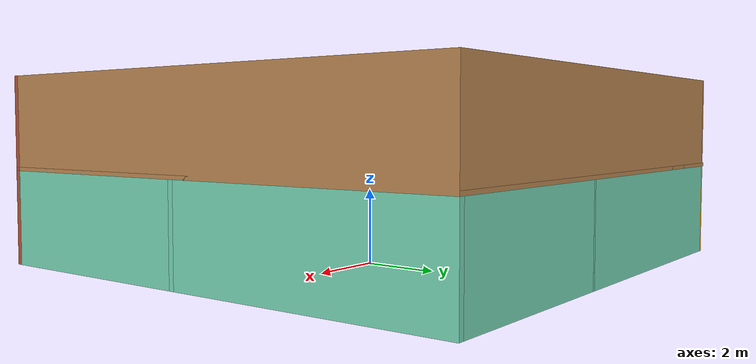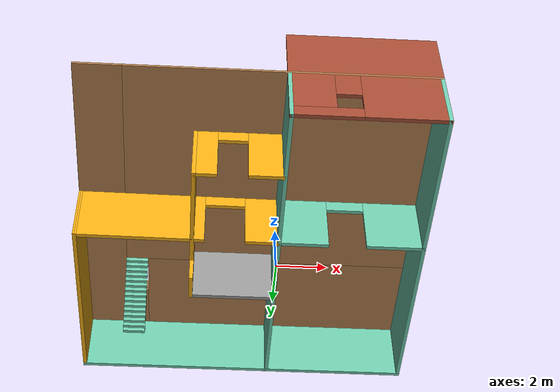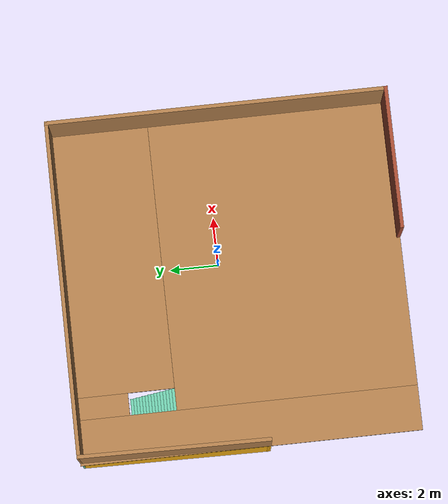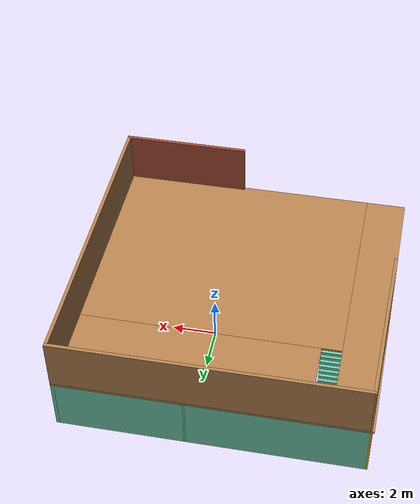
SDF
<?xml version='1.0'?>
<sdf version='1.7'>
  <model name='Robot_House'>
    <pose>-1.06694 -0.541754 0 0 -0 0</pose>
    <link name='Floor_0'>
      <pose>-0 0.000103 2.5 0 -0 0</pose>
      <visual name='Floor_0_Visual_0'>
        <pose>-5.88955 0 0.05 0 -0 0</pose>
        <geometry>
          <box>
            <size>1.8219 13.751 0.1</size>
          </box>
        </geometry>
        <material>
          <script>
            <uri>file://media/materials/scripts/gazebo.material</uri>
            <name>Gazebo/Wood</name>
          </script>
          <ambient>1 0.764706 0.305882 1</ambient>
        </material>
        <meta>
          <layer>1</layer>
        </meta>
      </visual>
      <collision name='Floor_0_Collision_0'>
        <geometry>
          <box>
            <size>1.8219 13.751 0.1</size>
          </box>
        </geometry>
        <pose>-5.88955 0 0.05 0 -0 0</pose>
      </collision>
      <visual name='Floor_0_Visual_1'>
        <pose>0.910949 -2.02113 0.05 0 -0 0</pose>
        <geometry>
          <box>
            <size>11.7791 9.70874 0.1</size>
          </box>
        </geometry>
        <material>
          <script>
            <uri>file://media/materials/scripts/gazebo.material</uri>
            <name>Gazebo/Wood</name>
          </script>
          <ambient>1 0.764706 0.305882 1</ambient>
        </material>
        <meta>
          <layer>1</layer>
        </meta>
      </visual>
      <collision name='Floor_0_Collision_1'>
        <geometry>
          <box>
            <size>11.7791 9.70874 0.1</size>
          </box>
        </geometry>
        <pose>0.910949 -2.02113 0.05 0 -0 0</pose>
      </collision>
      <visual name='Floor_0_Visual_2'>
        <pose>1.35818 4.85437 0.05 0 -0 0</pose>
        <geometry>
          <box>
            <size>10.8846 4.04226 0.1</size>
          </box>
        </geometry>
        <material>
          <script>
            <uri>file://media/materials/scripts/gazebo.material</uri>
            <name>Gazebo/Wood</name>
          </script>
          <ambient>1 0.764706 0.305882 1</ambient>
        </material>
        <meta>
          <layer>1</layer>
        </meta>
      </visual>
      <collision name='Floor_0_Collision_2'>
        <geometry>
          <box>
            <size>10.8846 4.04226 0.1</size>
          </box>
        </geometry>
        <pose>1.35818 4.85437 0.05 0 -0 0</pose>
      </collision>
      <visual name='Floor_0_Visual_3'>
        <pose>-4.53137 5.79526 0.05 0 -0 0</pose>
        <geometry>
          <box>
            <size>0.894464 2.16048 0.1</size>
          </box>
        </geometry>
        <material>
          <script>
            <uri>file://media/materials/scripts/gazebo.material</uri>
            <name>Gazebo/Wood</name>
          </script>
          <ambient>1 0.764706 0.305882 1</ambient>
        </material>
        <meta>
          <layer>1</layer>
        </meta>
      </visual>
      <collision name='Floor_0_Collision_3'>
        <geometry>
          <box>
            <size>0.894464 2.16048 0.1</size>
          </box>
        </geometry>
        <pose>-4.53137 5.79526 0.05 0 -0 0</pose>
      </collision>
    </link>
    <link name='Stairs_0'>
      <visual name='Stairs_0_Visual_0'>
        <pose>-4.53137 4.6524 0.083333 0 -0 0</pose>
        <geometry>
          <box>
            <size>0.894464 0.125452 0.166667</size>
          </box>
        </geometry>
        <material>
          <script>
            <uri>file://media/materials/scripts/gazebo.material</uri>
            <name>Gazebo/Grey</name>
          </script>
          <ambient>0.435294 0.796078 0.67451 1</ambient>
        </material>
        <meta>
          <layer>0</layer>
        </meta>
      </visual>
      <collision name='Stairs_0_Collision_0'>
        <geometry>
          <box>
            <size>0.894464 0.125452 0.166667</size>
          </box>
        </geometry>
        <pose>-4.53137 4.6524 0.083333 0 -0 0</pose>
      </collision>
      <visual name='Stairs_0_Visual_1'>
        <pose>-4.53137 4.52694 0.25 0 -0 0</pose>
        <geometry>
          <box>
            <size>0.894464 0.125452 0.166667</size>
          </box>
        </geometry>
        <material>
          <script>
            <uri>file://media/materials/scripts/gazebo.material</uri>
            <name>Gazebo/Grey</name>
          </script>
          <ambient>0.435294 0.796078 0.67451 1</ambient>
        </material>
        <meta>
          <layer>0</layer>
        </meta>
      </visual>
      <collision name='Stairs_0_Collision_1'>
        <geometry>
          <box>
            <size>0.894464 0.125452 0.166667</size>
          </box>
        </geometry>
        <pose>-4.53137 4.52694 0.25 0 -0 0</pose>
      </collision>
      <visual name='Stairs_0_Visual_2'>
        <pose>-4.53137 4.40149 0.416667 0 -0 0</pose>
        <geometry>
          <box>
            <size>0.894464 0.125452 0.166667</size>
          </box>
        </geometry>
        <material>
          <script>
            <uri>file://media/materials/scripts/gazebo.material</uri>
            <name>Gazebo/Grey</name>
          </script>
          <ambient>0.435294 0.796078 0.67451 1</ambient>
        </material>
        <meta>
          <layer>0</layer>
        </meta>
      </visual>
      <collision name='Stairs_0_Collision_2'>
        <geometry>
          <box>
            <size>0.894464 0.125452 0.166667</size>
          </box>
        </geometry>
        <pose>-4.53137 4.40149 0.416667 0 -0 0</pose>
      </collision>
      <visual name='Stairs_0_Visual_3'>
        <pose>-4.53137 4.27604 0.583333 0 -0 0</pose>
        <geometry>
          <box>
            <size>0.894464 0.125452 0.166667</size>
          </box>
        </geometry>
        <material>
          <script>
            <uri>file://media/materials/scripts/gazebo.material</uri>
            <name>Gazebo/Grey</name>
          </script>
          <ambient>0.435294 0.796078 0.67451 1</ambient>
        </material>
        <meta>
          <layer>0</layer>
        </meta>
      </visual>
      <collision name='Stairs_0_Collision_3'>
        <geometry>
          <box>
            <size>0.894464 0.125452 0.166667</size>
          </box>
        </geometry>
        <pose>-4.53137 4.27604 0.583333 0 -0 0</pose>
      </collision>
      <visual name='Stairs_0_Visual_4'>
        <pose>-4.53137 4.15059 0.75 0 -0 0</pose>
        <geometry>
          <box>
            <size>0.894464 0.125452 0.166667</size>
          </box>
        </geometry>
        <material>
          <script>
            <uri>file://media/materials/scripts/gazebo.material</uri>
            <name>Gazebo/Grey</name>
          </script>
          <ambient>0.435294 0.796078 0.67451 1</ambient>
        </material>
        <meta>
          <layer>0</layer>
        </meta>
      </visual>
      <collision name='Stairs_0_Collision_4'>
        <geometry>
          <box>
            <size>0.894464 0.125452 0.166667</size>
          </box>
        </geometry>
        <pose>-4.53137 4.15059 0.75 0 -0 0</pose>
      </collision>
      <visual name='Stairs_0_Visual_5'>
        <pose>-4.53137 4.02514 0.916667 0 -0 0</pose>
        <geometry>
          <box>
            <size>0.894464 0.125452 0.166667</size>
          </box>
        </geometry>
        <material>
          <script>
            <uri>file://media/materials/scripts/gazebo.material</uri>
            <name>Gazebo/Grey</name>
          </script>
          <ambient>0.435294 0.796078 0.67451 1</ambient>
        </material>
        <meta>
          <layer>0</layer>
        </meta>
      </visual>
      <collision name='Stairs_0_Collision_5'>
        <geometry>
          <box>
            <size>0.894464 0.125452 0.166667</size>
          </box>
        </geometry>
        <pose>-4.53137 4.02514 0.916667 0 -0 0</pose>
      </collision>
      <visual name='Stairs_0_Visual_6'>
        <pose>-4.53137 3.89968 1.08333 0 -0 0</pose>
        <geometry>
          <box>
            <size>0.894464 0.125452 0.166667</size>
          </box>
        </geometry>
        <material>
          <script>
            <uri>file://media/materials/scripts/gazebo.material</uri>
            <name>Gazebo/Grey</name>
          </script>
          <ambient>0.435294 0.796078 0.67451 1</ambient>
        </material>
        <meta>
          <layer>0</layer>
        </meta>
      </visual>
      <collision name='Stairs_0_Collision_6'>
        <geometry>
          <box>
            <size>0.894464 0.125452 0.166667</size>
          </box>
        </geometry>
        <pose>-4.53137 3.89968 1.08333 0 -0 0</pose>
      </collision>
      <visual name='Stairs_0_Visual_7'>
        <pose>-4.53137 3.77423 1.25 0 -0 0</pose>
        <geometry>
          <box>
            <size>0.894464 0.125452 0.166667</size>
          </box>
        </geometry>
        <material>
          <script>
            <uri>file://media/materials/scripts/gazebo.material</uri>
            <name>Gazebo/Grey</name>
          </script>
          <ambient>0.435294 0.796078 0.67451 1</ambient>
        </material>
        <meta>
          <layer>0</layer>
        </meta>
      </visual>
      <collision name='Stairs_0_Collision_7'>
        <geometry>
          <box>
            <size>0.894464 0.125452 0.166667</size>
          </box>
        </geometry>
        <pose>-4.53137 3.77423 1.25 0 -0 0</pose>
      </collision>
      <visual name='Stairs_0_Visual_8'>
        <pose>-4.53137 3.64878 1.41667 0 -0 0</pose>
        <geometry>
          <box>
            <size>0.894464 0.125452 0.166667</size>
          </box>
        </geometry>
        <material>
          <script>
            <uri>file://media/materials/scripts/gazebo.material</uri>
            <name>Gazebo/Grey</name>
          </script>
          <ambient>0.435294 0.796078 0.67451 1</ambient>
        </material>
        <meta>
          <layer>0</layer>
        </meta>
      </visual>
      <collision name='Stairs_0_Collision_8'>
        <geometry>
          <box>
            <size>0.894464 0.125452 0.166667</size>
          </box>
        </geometry>
        <pose>-4.53137 3.64878 1.41667 0 -0 0</pose>
      </collision>
      <visual name='Stairs_0_Visual_9'>
        <pose>-4.53137 3.52333 1.58333 0 -0 0</pose>
        <geometry>
          <box>
            <size>0.894464 0.125452 0.166667</size>
          </box>
        </geometry>
        <material>
          <script>
            <uri>file://media/materials/scripts/gazebo.material</uri>
            <name>Gazebo/Grey</name>
          </script>
          <ambient>0.435294 0.796078 0.67451 1</ambient>
        </material>
        <meta>
          <layer>0</layer>
        </meta>
      </visual>
      <collision name='Stairs_0_Collision_9'>
        <geometry>
          <box>
            <size>0.894464 0.125452 0.166667</size>
          </box>
        </geometry>
        <pose>-4.53137 3.52333 1.58333 0 -0 0</pose>
      </collision>
      <visual name='Stairs_0_Visual_10'>
        <pose>-4.53137 3.39788 1.75 0 -0 0</pose>
        <geometry>
          <box>
            <size>0.894464 0.125452 0.166667</size>
          </box>
        </geometry>
        <material>
          <script>
            <uri>file://media/materials/scripts/gazebo.material</uri>
            <name>Gazebo/Grey</name>
          </script>
          <ambient>0.435294 0.796078 0.67451 1</ambient>
        </material>
        <meta>
          <layer>0</layer>
        </meta>
      </visual>
      <collision name='Stairs_0_Collision_10'>
        <geometry>
          <box>
            <size>0.894464 0.125452 0.166667</size>
          </box>
        </geometry>
        <pose>-4.53137 3.39788 1.75 0 -0 0</pose>
      </collision>
      <visual name='Stairs_0_Visual_11'>
        <pose>-4.53137 3.27243 1.91667 0 -0 0</pose>
        <geometry>
          <box>
            <size>0.894464 0.125452 0.166667</size>
          </box>
        </geometry>
        <material>
          <script>
            <uri>file://media/materials/scripts/gazebo.material</uri>
            <name>Gazebo/Grey</name>
          </script>
          <ambient>0.435294 0.796078 0.67451 1</ambient>
        </material>
        <meta>
          <layer>0</layer>
        </meta>
      </visual>
      <collision name='Stairs_0_Collision_11'>
        <geometry>
          <box>
            <size>0.894464 0.125452 0.166667</size>
          </box>
        </geometry>
        <pose>-4.53137 3.27243 1.91667 0 -0 0</pose>
      </collision>
      <visual name='Stairs_0_Visual_12'>
        <pose>-4.53137 3.14697 2.08333 0 -0 0</pose>
        <geometry>
          <box>
            <size>0.894464 0.125452 0.166667</size>
          </box>
        </geometry>
        <material>
          <script>
            <uri>file://media/materials/scripts/gazebo.material</uri>
            <name>Gazebo/Grey</name>
          </script>
          <ambient>0.435294 0.796078 0.67451 1</ambient>
        </material>
        <meta>
          <layer>0</layer>
        </meta>
      </visual>
      <collision name='Stairs_0_Collision_12'>
        <geometry>
          <box>
            <size>0.894464 0.125452 0.166667</size>
          </box>
        </geometry>
        <pose>-4.53137 3.14697 2.08333 0 -0 0</pose>
      </collision>
      <visual name='Stairs_0_Visual_13'>
        <pose>-4.53137 3.02152 2.25 0 -0 0</pose>
        <geometry>
          <box>
            <size>0.894464 0.125452 0.166667</size>
          </box>
        </geometry>
        <material>
          <script>
            <uri>file://media/materials/scripts/gazebo.material</uri>
            <name>Gazebo/Grey</name>
          </script>
          <ambient>0.435294 0.796078 0.67451 1</ambient>
        </material>
        <meta>
          <layer>0</layer>
        </meta>
      </visual>
      <collision name='Stairs_0_Collision_13'>
        <geometry>
          <box>
            <size>0.894464 0.125452 0.166667</size>
          </box>
        </geometry>
        <pose>-4.53137 3.02152 2.25 0 -0 0</pose>
      </collision>
      <visual name='Stairs_0_Visual_14'>
        <pose>-4.53137 2.89607 2.41667 0 -0 0</pose>
        <geometry>
          <box>
            <size>0.894464 0.125452 0.166667</size>
          </box>
        </geometry>
        <material>
          <script>
            <uri>file://media/materials/scripts/gazebo.material</uri>
            <name>Gazebo/Grey</name>
          </script>
          <ambient>0.435294 0.796078 0.67451 1</ambient>
        </material>
        <meta>
          <layer>0</layer>
        </meta>
      </visual>
      <collision name='Stairs_0_Collision_14'>
        <geometry>
          <box>
            <size>0.894464 0.125452 0.166667</size>
          </box>
        </geometry>
        <pose>-4.53137 2.89607 2.41667 0 -0 0</pose>
      </collision>
    </link>
    <link name='Wall_0'>
      <collision name='Wall_0_Collision'>
        <geometry>
          <box>
            <size>13.5 0.15 2.5</size>
          </box>
        </geometry>
        <pose>0 0 1.25 0 -0 0</pose>
      </collision>
      <visual name='Wall_0_Visual'>
        <pose>0 0 1.25 0 -0 0</pose>
        <geometry>
          <box>
            <size>13.5 0.15 2.5</size>
          </box>
        </geometry>
        <material>
          <script>
            <uri>file://media/materials/scripts/gazebo.material</uri>
            <name>Gazebo/Grey</name>
          </script>
          <ambient>0.435294 0.796078 0.67451 1</ambient>
        </material>
        <meta>
          <layer>0</layer>
        </meta>
      </visual>
      <pose>0.050496 6.79961 0 0 -0 0</pose>
    </link>
    <link name='Wall_1'>
      <collision name='Wall_1_Collision'>
        <geometry>
          <box>
            <size>13.7504 0.15 2.5</size>
          </box>
        </geometry>
        <pose>0 0 1.25 0 -0 0</pose>
      </collision>
      <visual name='Wall_1_Visual'>
        <pose>0 0 1.25 0 -0 0</pose>
        <geometry>
          <box>
            <size>13.7504 0.15 2.5</size>
          </box>
        </geometry>
        <material>
          <script>
            <uri>file://media/materials/scripts/gazebo.material</uri>
            <name>Gazebo/Grey</name>
          </script>
          <ambient>0.435294 0.796078 0.67451 1</ambient>
        </material>
        <meta>
          <layer>0</layer>
        </meta>
      </visual>
      <pose>6.7255 -0.000394 0 0 -0 -1.5708</pose>
    </link>
    <link name='Wall_10'>
      <collision name='Wall_10_Collision'>
        <geometry>
          <box>
            <size>3.42964 0.15 2.5</size>
          </box>
        </geometry>
        <pose>0 0 1.25 0 -0 0</pose>
      </collision>
      <visual name='Wall_10_Visual'>
        <pose>0 0 1.25 0 -0 0</pose>
        <geometry>
          <box>
            <size>3.42964 0.15 2.5</size>
          </box>
        </geometry>
        <material>
          <script>
            <uri>file://media/materials/scripts/gazebo.material</uri>
            <name>Gazebo/Grey</name>
          </script>
          <ambient>1 1 1 1</ambient>
        </material>
        <meta>
          <layer>0</layer>
        </meta>
      </visual>
      <pose>-0.560176 2.40226 0 0 -0 3.14159</pose>
    </link>
    <link name='Wall_11'>
      <pose>-2.23518 -0.772739 0 0 -0 -1.5708</pose>
      <visual name='Wall_11_Visual_0'>
        <pose>-2.70776 0 1.25 0 -0 0</pose>
        <geometry>
          <box>
            <size>1.08536 0.15 2.5</size>
          </box>
        </geometry>
        <material>
          <script>
            <uri>file://media/materials/scripts/gazebo.material</uri>
            <name>Gazebo/Grey</name>
          </script>
          <ambient>0.960784 0.686275 0.0784314 1</ambient>
        </material>
        <meta>
          <layer>0</layer>
        </meta>
      </visual>
      <collision name='Wall_11_Collision_0'>
        <geometry>
          <box>
            <size>1.08536 0.15 2.5</size>
          </box>
        </geometry>
        <pose>-2.70776 0 1.25 0 -0 0</pose>
      </collision>
      <visual name='Wall_11_Visual_1'>
        <pose>1.04545 0 1.25 0 -0 0</pose>
        <geometry>
          <box>
            <size>4.40998 0.15 2.5</size>
          </box>
        </geometry>
        <material>
          <script>
            <uri>file://media/materials/scripts/gazebo.material</uri>
            <name>Gazebo/Grey</name>
          </script>
          <ambient>0.960784 0.686275 0.0784314 1</ambient>
        </material>
        <meta>
          <layer>0</layer>
        </meta>
      </visual>
      <collision name='Wall_11_Collision_1'>
        <geometry>
          <box>
            <size>4.40998 0.15 2.5</size>
          </box>
        </geometry>
        <pose>1.04545 0 1.25 0 -0 0</pose>
      </collision>
      <visual name='Wall_11_Visual_2'>
        <pose>-1.66231 0 2.25 0 -0 0</pose>
        <geometry>
          <box>
            <size>1.00554 0.15 0.5</size>
          </box>
        </geometry>
        <material>
          <script>
            <uri>file://media/materials/scripts/gazebo.material</uri>
            <name>Gazebo/Grey</name>
          </script>
          <ambient>0.960784 0.686275 0.0784314 1</ambient>
        </material>
        <meta>
          <layer>0</layer>
        </meta>
      </visual>
      <collision name='Wall_11_Collision_2'>
        <geometry>
          <box>
            <size>1.00554 0.15 0.5</size>
          </box>
        </geometry>
        <pose>-1.66231 0 2.25 0 -0 0</pose>
      </collision>
    </link>
    <link name='Wall_12'>
      <pose>-0.595355 -3.94774 0 0 -0 0</pose>
      <visual name='Wall_12_Visual_0'>
        <pose>-1.24751 0 1.25 0 -0 0</pose>
        <geometry>
          <box>
            <size>0.934632 0.15 2.5</size>
          </box>
        </geometry>
        <material>
          <script>
            <uri>file://media/materials/scripts/gazebo.material</uri>
            <name>Gazebo/Grey</name>
          </script>
          <ambient>0.960784 0.686275 0.0784314 1</ambient>
        </material>
        <meta>
          <layer>0</layer>
        </meta>
      </visual>
      <collision name='Wall_12_Collision_0'>
        <geometry>
          <box>
            <size>0.934632 0.15 2.5</size>
          </box>
        </geometry>
        <pose>-1.24751 0 1.25 0 -0 0</pose>
      </collision>
      <visual name='Wall_12_Visual_1'>
        <pose>1.04044 0 1.25 0 -0 0</pose>
        <geometry>
          <box>
            <size>1.34876 0.15 2.5</size>
          </box>
        </geometry>
        <material>
          <script>
            <uri>file://media/materials/scripts/gazebo.material</uri>
            <name>Gazebo/Grey</name>
          </script>
          <ambient>0.960784 0.686275 0.0784314 1</ambient>
        </material>
        <meta>
          <layer>0</layer>
        </meta>
      </visual>
      <collision name='Wall_12_Collision_1'>
        <geometry>
          <box>
            <size>1.34876 0.15 2.5</size>
          </box>
        </geometry>
        <pose>1.04044 0 1.25 0 -0 0</pose>
      </collision>
      <visual name='Wall_12_Visual_2'>
        <pose>-0.207064 0 2.25 0 -0 0</pose>
        <geometry>
          <box>
            <size>1.14625 0.15 0.5</size>
          </box>
        </geometry>
        <material>
          <script>
            <uri>file://media/materials/scripts/gazebo.material</uri>
            <name>Gazebo/Grey</name>
          </script>
          <ambient>0.960784 0.686275 0.0784314 1</ambient>
        </material>
        <meta>
          <layer>0</layer>
        </meta>
      </visual>
      <collision name='Wall_12_Collision_2'>
        <geometry>
          <box>
            <size>1.14625 0.15 0.5</size>
          </box>
        </geometry>
        <pose>-0.207064 0 2.25 0 -0 0</pose>
      </collision>
    </link>
    <link name='Wall_14'>
      <collision name='Wall_14_Collision'>
        <geometry>
          <box>
            <size>13.5 0.15 2.5</size>
          </box>
        </geometry>
        <pose>0 0 1.25 0 -0 0</pose>
      </collision>
      <visual name='Wall_14_Visual'>
        <pose>0 0 1.25 0 -0 0</pose>
        <geometry>
          <box>
            <size>13.5 0.15 2.5</size>
          </box>
        </geometry>
        <material>
          <script>
            <uri>file://media/materials/scripts/gazebo.material</uri>
            <name>Gazebo/Wood</name>
          </script>
          <ambient>0.760784 0.662745 0.627451 1</ambient>
        </material>
        <meta>
          <layer>1</layer>
        </meta>
      </visual>
      <pose>0.050496 6.79961 2.5 0 -0 0</pose>
    </link>
    <link name='Wall_15'>
      <collision name='Wall_15_Collision'>
        <geometry>
          <box>
            <size>13.75 0.15 2.5</size>
          </box>
        </geometry>
        <pose>0 0 1.25 0 -0 0</pose>
      </collision>
      <visual name='Wall_15_Visual'>
        <pose>0 0 1.25 0 -0 0</pose>
        <geometry>
          <box>
            <size>13.75 0.15 2.5</size>
          </box>
        </geometry>
        <material>
          <script>
            <uri>file://media/materials/scripts/gazebo.material</uri>
            <name>Gazebo/Wood</name>
          </script>
          <ambient>0.760784 0.662745 0.627451 1</ambient>
        </material>
        <meta>
          <layer>1</layer>
        </meta>
      </visual>
      <pose>6.7255 -0.000394 2.5 0 -0 -1.5708</pose>
    </link>
    <link name='Wall_16'>
      <collision name='Wall_16_Collision'>
        <geometry>
          <box>
            <size>5.75 0.15 2.5</size>
          </box>
        </geometry>
        <pose>0 0 1.25 0 -0 0</pose>
      </collision>
      <visual name='Wall_16_Visual'>
        <pose>0 0 1.25 0 -0 0</pose>
        <geometry>
          <box>
            <size>5.75 0.15 2.5</size>
          </box>
        </geometry>
        <material>
          <script>
            <uri>file://media/materials/scripts/gazebo.material</uri>
            <name>Gazebo/Bricks</name>
          </script>
          <ambient>1 1 1 1</ambient>
        </material>
        <meta>
          <layer>1</layer>
        </meta>
      </visual>
      <pose>3.9255 -6.80039 2.5 0 -0 3.14159</pose>
    </link>
    <link name='Wall_19'>
      <collision name='Wall_19_Collision'>
        <geometry>
          <box>
            <size>7.65067 0.15 2.5</size>
          </box>
        </geometry>
        <pose>0 0 1.25 0 -0 0</pose>
      </collision>
      <visual name='Wall_19_Visual'>
        <pose>0 0 1.25 0 -0 0</pose>
        <geometry>
          <box>
            <size>7.65067 0.15 2.5</size>
          </box>
        </geometry>
        <material>
          <script>
            <uri>file://media/materials/scripts/gazebo.material</uri>
            <name>Gazebo/Wood</name>
          </script>
          <ambient>0.760784 0.662745 0.627451 1</ambient>
        </material>
        <meta>
          <layer>1</layer>
        </meta>
      </visual>
      <pose>-6.6745 3.04961 2.5 0 -0 1.55746</pose>
    </link>
    <link name='Wall_2'>
      <pose>3.9255 -6.80039 0 0 -0 3.14159</pose>
      <visual name='Wall_2_Visual_0'>
        <pose>-1.32271 0 1.25 0 -0 0</pose>
        <geometry>
          <box>
            <size>3.10459 0.15 2.5</size>
          </box>
        </geometry>
        <material>
          <script>
            <uri>file://media/materials/scripts/gazebo.material</uri>
            <name>Gazebo/Bricks</name>
          </script>
          <ambient>0.435294 0.796078 0.67451 1</ambient>
        </material>
        <meta>
          <layer>0</layer>
        </meta>
      </visual>
      <collision name='Wall_2_Collision_0'>
        <geometry>
          <box>
            <size>3.10459 0.15 2.5</size>
          </box>
        </geometry>
        <pose>-1.32271 0 1.25 0 -0 0</pose>
      </collision>
      <visual name='Wall_2_Visual_1'>
        <pose>1.55229 0 0.25 0 -0 0</pose>
        <geometry>
          <box>
            <size>2.64541 0.15 0.5</size>
          </box>
        </geometry>
        <material>
          <script>
            <uri>file://media/materials/scripts/gazebo.material</uri>
            <name>Gazebo/Bricks</name>
          </script>
          <ambient>0.435294 0.796078 0.67451 1</ambient>
        </material>
        <meta>
          <layer>0</layer>
        </meta>
      </visual>
      <collision name='Wall_2_Collision_1'>
        <geometry>
          <box>
            <size>2.64541 0.15 0.5</size>
          </box>
        </geometry>
        <pose>1.55229 0 0.25 0 -0 0</pose>
      </collision>
      <visual name='Wall_2_Visual_2'>
        <pose>2.02265 0 1.5 0 -0 0</pose>
        <geometry>
          <box>
            <size>1.7047 0.15 2</size>
          </box>
        </geometry>
        <material>
          <script>
            <uri>file://media/materials/scripts/gazebo.material</uri>
            <name>Gazebo/Bricks</name>
          </script>
          <ambient>0.435294 0.796078 0.67451 1</ambient>
        </material>
        <meta>
          <layer>0</layer>
        </meta>
      </visual>
      <collision name='Wall_2_Collision_2'>
        <geometry>
          <box>
            <size>1.7047 0.15 2</size>
          </box>
        </geometry>
        <pose>2.02265 0 1.5 0 -0 0</pose>
      </collision>
      <visual name='Wall_2_Visual_3'>
        <pose>0.699946 0 1.9 0 -0 0</pose>
        <geometry>
          <box>
            <size>0.940715 0.15 1.2</size>
          </box>
        </geometry>
        <material>
          <script>
            <uri>file://media/materials/scripts/gazebo.material</uri>
            <name>Gazebo/Bricks</name>
          </script>
          <ambient>0.435294 0.796078 0.67451 1</ambient>
        </material>
        <meta>
          <layer>0</layer>
        </meta>
      </visual>
      <collision name='Wall_2_Collision_3'>
        <geometry>
          <box>
            <size>0.940715 0.15 1.2</size>
          </box>
        </geometry>
        <pose>0.699946 0 1.9 0 -0 0</pose>
      </collision>
    </link>
    <link name='Wall_3'>
      <collision name='Wall_3_Collision'>
        <geometry>
          <box>
            <size>6.32036 0.15 2.5</size>
          </box>
        </geometry>
        <pose>0 0 1.25 0 -0 0</pose>
      </collision>
      <visual name='Wall_3_Visual'>
        <pose>0 0 1.25 0 -0 0</pose>
        <geometry>
          <box>
            <size>6.32036 0.15 2.5</size>
          </box>
        </geometry>
        <material>
          <script>
            <uri>file://media/materials/scripts/gazebo.material</uri>
            <name>Gazebo/Grey</name>
          </script>
          <ambient>0.435294 0.796078 0.67451 1</ambient>
        </material>
        <meta>
          <layer>0</layer>
        </meta>
      </visual>
      <pose>1.1255 -3.71522 0 0 -0 1.5708</pose>
    </link>
    <link name='Wall_4'>
      <pose>-2.7995 -0.665215 0 0 -0 -3.13263</pose>
      <visual name='Wall_4_Visual_0'>
        <pose>-3.30281 0 1.25 0 -0 0</pose>
        <geometry>
          <box>
            <size>1.3947 0.15 2.5</size>
          </box>
        </geometry>
        <material>
          <script>
            <uri>file://media/materials/scripts/gazebo.material</uri>
            <name>Gazebo/Grey</name>
          </script>
          <ambient>0.960784 0.686275 0.0784314 1</ambient>
        </material>
        <meta>
          <layer>0</layer>
        </meta>
      </visual>
      <collision name='Wall_4_Collision_0'>
        <geometry>
          <box>
            <size>1.3947 0.15 2.5</size>
          </box>
        </geometry>
        <pose>-3.30281 0 1.25 0 -0 0</pose>
      </collision>
      <visual name='Wall_4_Visual_1'>
        <pose>1.48155 0 1.25 0 -0 0</pose>
        <geometry>
          <box>
            <size>5.03722 0.15 2.5</size>
          </box>
        </geometry>
        <material>
          <script>
            <uri>file://media/materials/scripts/gazebo.material</uri>
            <name>Gazebo/Grey</name>
          </script>
          <ambient>0.960784 0.686275 0.0784314 1</ambient>
        </material>
        <meta>
          <layer>0</layer>
        </meta>
      </visual>
      <collision name='Wall_4_Collision_1'>
        <geometry>
          <box>
            <size>5.03722 0.15 2.5</size>
          </box>
        </geometry>
        <pose>1.48155 0 1.25 0 -0 0</pose>
      </collision>
      <visual name='Wall_4_Visual_2'>
        <pose>-1.82126 0 2.25 0 -0 0</pose>
        <geometry>
          <box>
            <size>1.5684 0.15 0.5</size>
          </box>
        </geometry>
        <material>
          <script>
            <uri>file://media/materials/scripts/gazebo.material</uri>
            <name>Gazebo/Grey</name>
          </script>
          <ambient>0.960784 0.686275 0.0784314 1</ambient>
        </material>
        <meta>
          <layer>0</layer>
        </meta>
      </visual>
      <collision name='Wall_4_Collision_2'>
        <geometry>
          <box>
            <size>1.5684 0.15 0.5</size>
          </box>
        </geometry>
        <pose>-1.82126 0 2.25 0 -0 0</pose>
      </collision>
    </link>
    <link name='Wall_5'>
      <collision name='Wall_5_Collision'>
        <geometry>
          <box>
            <size>7.65067 0.15 2.5</size>
          </box>
        </geometry>
        <pose>0 0 1.25 0 -0 0</pose>
      </collision>
      <visual name='Wall_5_Visual'>
        <pose>0 0 1.25 0 -0 0</pose>
        <geometry>
          <box>
            <size>7.65067 0.15 2.5</size>
          </box>
        </geometry>
        <material>
          <script>
            <uri>file://media/materials/scripts/gazebo.material</uri>
            <name>Gazebo/Grey</name>
          </script>
          <ambient>0.960784 0.686275 0.0784314 1</ambient>
        </material>
        <meta>
          <layer>0</layer>
        </meta>
      </visual>
      <pose>-6.6745 3.04961 0 0 -0 1.55746</pose>
    </link>
    <link name='Wall_7'>
      <pose>1.10257 3.08479 0 0 -0 -1.56462</pose>
      <visual name='Wall_7_Visual_0'>
        <pose>-1.05054 0 1.25 0 -0 0</pose>
        <geometry>
          <box>
            <size>5.47871 0.15 2.5</size>
          </box>
        </geometry>
        <material>
          <script>
            <uri>file://media/materials/scripts/gazebo.material</uri>
            <name>Gazebo/Grey</name>
          </script>
          <ambient>0.435294 0.796078 0.67451 1</ambient>
        </material>
        <meta>
          <layer>0</layer>
        </meta>
      </visual>
      <collision name='Wall_7_Collision_0'>
        <geometry>
          <box>
            <size>5.47871 0.15 2.5</size>
          </box>
        </geometry>
        <pose>-1.05054 0 1.25 0 -0 0</pose>
      </collision>
      <visual name='Wall_7_Visual_1'>
        <pose>3.29478 0 1.25 0 -0 0</pose>
        <geometry>
          <box>
            <size>0.990224 0.15 2.5</size>
          </box>
        </geometry>
        <material>
          <script>
            <uri>file://media/materials/scripts/gazebo.material</uri>
            <name>Gazebo/Grey</name>
          </script>
          <ambient>0.435294 0.796078 0.67451 1</ambient>
        </material>
        <meta>
          <layer>0</layer>
        </meta>
      </visual>
      <collision name='Wall_7_Collision_1'>
        <geometry>
          <box>
            <size>0.990224 0.15 2.5</size>
          </box>
        </geometry>
        <pose>3.29478 0 1.25 0 -0 0</pose>
      </collision>
      <visual name='Wall_7_Visual_2'>
        <pose>2.24424 0 2.25 0 -0 0</pose>
        <geometry>
          <box>
            <size>1.11085 0.15 0.5</size>
          </box>
        </geometry>
        <material>
          <script>
            <uri>file://media/materials/scripts/gazebo.material</uri>
            <name>Gazebo/Grey</name>
          </script>
          <ambient>0.435294 0.796078 0.67451 1</ambient>
        </material>
        <meta>
          <layer>0</layer>
        </meta>
      </visual>
      <collision name='Wall_7_Collision_2'>
        <geometry>
          <box>
            <size>1.11085 0.15 0.5</size>
          </box>
        </geometry>
        <pose>2.24424 0 2.25 0 -0 0</pose>
      </collision>
    </link>
    <link name='Wall_8'>
      <pose>3.9255 -0.630036 0 0 -0 0</pose>
      <visual name='Wall_8_Visual_0'>
        <pose>-1.88055 0 1.25 0 -0 0</pose>
        <geometry>
          <box>
            <size>1.98889 0.15 2.5</size>
          </box>
        </geometry>
        <material>
          <script>
            <uri>file://media/materials/scripts/gazebo.material</uri>
            <name>Gazebo/Grey</name>
          </script>
          <ambient>0.435294 0.796078 0.67451 1</ambient>
        </material>
        <meta>
          <layer>0</layer>
        </meta>
      </visual>
      <collision name='Wall_8_Collision_0'>
        <geometry>
          <box>
            <size>1.98889 0.15 2.5</size>
          </box>
        </geometry>
        <pose>-1.88055 0 1.25 0 -0 0</pose>
      </collision>
      <visual name='Wall_8_Visual_1'>
        <pose>1.72588 0 1.25 0 -0 0</pose>
        <geometry>
          <box>
            <size>2.29825 0.15 2.5</size>
          </box>
        </geometry>
        <material>
          <script>
            <uri>file://media/materials/scripts/gazebo.material</uri>
            <name>Gazebo/Grey</name>
          </script>
          <ambient>0.435294 0.796078 0.67451 1</ambient>
        </material>
        <meta>
          <layer>0</layer>
        </meta>
      </visual>
      <collision name='Wall_8_Collision_1'>
        <geometry>
          <box>
            <size>2.29825 0.15 2.5</size>
          </box>
        </geometry>
        <pose>1.72588 0 1.25 0 -0 0</pose>
      </collision>
      <visual name='Wall_8_Visual_2'>
        <pose>-0.154675 0 2.25 0 -0 0</pose>
        <geometry>
          <box>
            <size>1.46286 0.15 0.5</size>
          </box>
        </geometry>
        <material>
          <script>
            <uri>file://media/materials/scripts/gazebo.material</uri>
            <name>Gazebo/Grey</name>
          </script>
          <ambient>0.435294 0.796078 0.67451 1</ambient>
        </material>
        <meta>
          <layer>0</layer>
        </meta>
      </visual>
      <collision name='Wall_8_Collision_2'>
        <geometry>
          <box>
            <size>1.46286 0.15 0.5</size>
          </box>
        </geometry>
        <pose>-0.154675 0 2.25 0 -0 0</pose>
      </collision>
    </link>
    <link name='Window_0'>
      <collision name='Window_0_Collision'>
        <geometry>
          <box>
            <size>1.57 0.2 1</size>
          </box>
        </geometry>
        <pose>0 0 0.5 0 -0 0</pose>
      </collision>
      <visual name='Window_0_Visual'>
        <pose>0 0 0.5 0 -0 0</pose>
        <geometry>
          <box>
            <size>1.57 0.2 1</size>
          </box>
        </geometry>
        <material>
          <script>
            <uri>file://media/materials/scripts/gazebo.material</uri>
            <name>Gazebo/Grey</name>
          </script>
        </material>
      </visual>
      <pose>-4.51378 -0.552755 1 0 -0 0</pose>
    </link>
    <static>1</static>
  </model>
</sdf>
